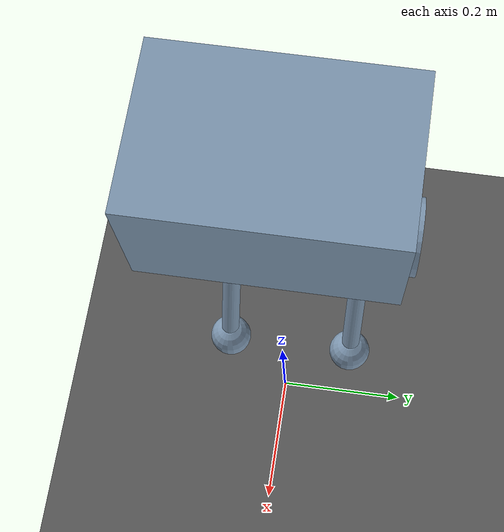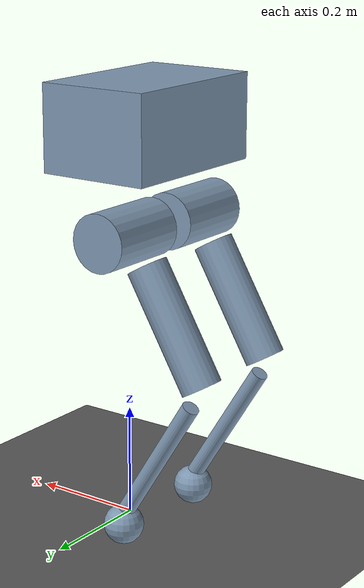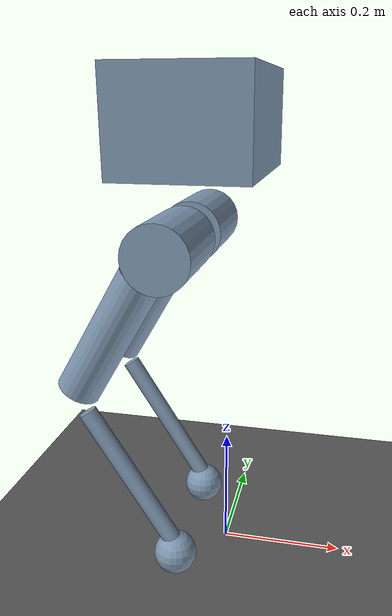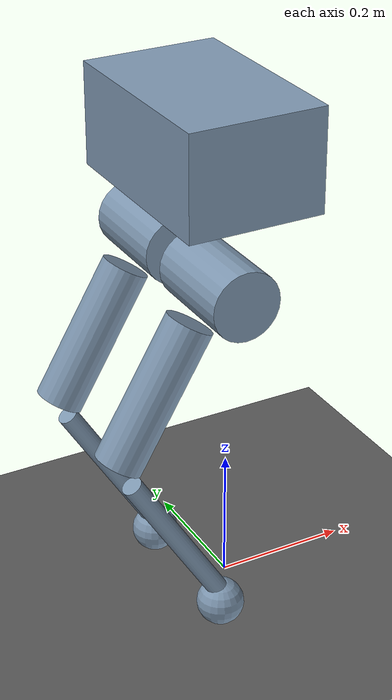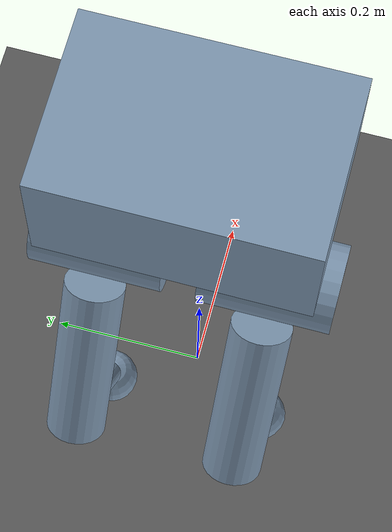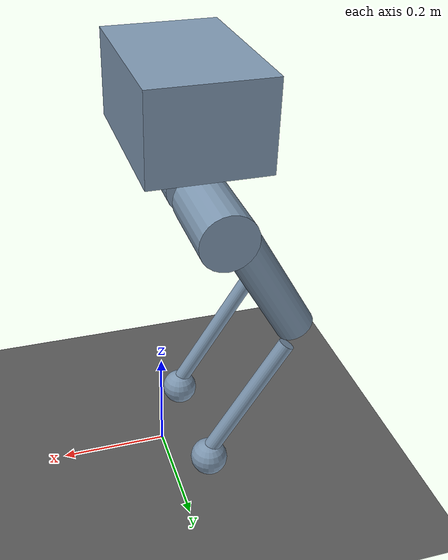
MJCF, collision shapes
<mujoco model="PF_A">
  <compiler angle="radian" meshdir="meshes" autolimits="true" />
  <size njmax="5000" nconmax="10000" />
  <asset>
    <mesh name="base_link" file="base_link.STL" />
    <mesh name="abad_left_link" file="abad_left_link.STL" />
    <mesh name="hip_left_link" file="hip_left_link.STL" />
    <mesh name="knee_left_link" file="knee_left_link.STL" />
    <mesh name="foot_left_link" file="foot_left_link.STL" />
    <mesh name="abad_right_link" file="abad_right_link.STL" />
    <mesh name="hip_right_link" file="hip_right_link.STL" />
    <mesh name="knee_right_link" file="knee_right_link.STL" />
    <mesh name="foot_right_link" file="foot_right_link.STL" />
  </asset>

  <default>
    <light castshadow="false" diffuse="1 1 1" />
    <camera fovy="60" />
    <default class="visual">
      <geom contype="0" conaffinity="0" group="1" type="mesh" rgba="0.8 0.3 0.3 1"/>
    </default>
    <default class="collision">
      <geom contype="1" conaffinity="1" friction="1.0 0.3 0.3" rgba="0.5 0.6 0.7 0" margin="0.000"
        group="0" />
    </default>
    <joint damping="0.05" armature="0.01" frictionloss="0.01" />
  </default>

  <visual>
    <rgba com="0.502 1.0 0 1.0" fog="0 0 0 1" contactpoint="0.9 0.9 0.9 0.8"
      contactforce="0.9 0.9 0.9 0.5" />
    <scale com="0.05" forcewidth="0.04" contactwidth="0.10" contactheight="0.005" selectpoint="0.01" />
    <map force="0.015" />
  </visual>

  <asset>
    <texture type="skybox" builtin="gradient" width="512" height="512" rgb1=".4 .6 .8" rgb2="0 0 0" />
    <texture name="texgeom" type="cube" builtin="flat" mark="cross" width="128" height="128"
      rgb1="0.6 0.6 0.6" rgb2="0.6 0.6 0.6" markrgb="1 1 1" />
    <texture name="texplane" type="2d" builtin="checker" rgb1=".4 .4 .4" rgb2=".6 .6 .6"
      width="512" height="512" />
    <material name='MatPlane' reflectance='0.3' texture="texplane" texrepeat="1 1" texuniform="true"
      rgba=".7 .7 .7 1" />
  </asset>
  <option timestep="0.0005" />

  <worldbody>
    <light directional="true" diffuse=".8 .8 .8" pos="0 0 10" dir="0 0 -10" />
    <geom name="floor" pos="0 0 0" type="plane" size="0 0 1" material="MatPlane"
      friction="1.0 0.3 0.3" />
    <camera name="track" mode="targetbody" target="base" pos="2.5 -2.3 1.2"
      xyaxes="1 0 0 0 0.707 0.707" />

    <body name="base" pos="0 0 0.63">
      <inertial pos="-0.0211701 0.00034639 0.00300161"
        quat="0.940856 -0.0179436 -0.338331 -0.000434039" mass="5.65937"
        diaginertia="0.0849171 0.0566351 0.0481461" />
      <joint name="floating_base" type="free" />
      <geom class="visual" mesh="base_link" />
      <site name="imu" pos="0 0 0" />
      <geom class="collision" size="0.1 0.15 0.075" pos="-0.04 0 0.09" type="box" />
      <body name="abad_L_Link" pos="0.0142 0.095 -0.08176">
        <inertial pos="-0.0701016 0.0472637 0.00010664" quat="0.598895 0.589935 0.381283 0.38461"
          mass="1.03649" diaginertia="0.00221344 0.00178073 0.00114915" />
        <joint name="abad_L_Joint" pos="0 0 0" axis="1 0 0" range="-0.383972 0.785398" />
        <geom class="visual" mesh="abad_left_link" />
        <geom class="collision" size="0.05 0.075" pos="-0.08 0 0" quat="0.707388 0.706825 0 0"
          type="cylinder" />
        <body name="hip_L_Link" pos="-0.0802 0.031 0">
          <inertial pos="-0.030474 -0.0544646 -0.0392024" quat="0.804429 0.225772 0.21211 0.506883"
            mass="1.73405" diaginertia="0.016109 0.0158466 0.00229167" />
          <joint name="hip_L_Joint" pos="0 0 0" axis="0 1 0" range="-1.0472 1.48353" />
          <geom class="visual" mesh="hip_left_link" />
          <geom class="collision" size="0.035 0.11" pos="-0.1 -0.03 -0.14"
            quat="0.965093 0 0.261909 0"
            type="cylinder" />
          <body name="knee_L_Link" pos="-0.15 -0.021 -0.25981">
            <inertial pos="0.0882117 -4.63957e-05 -0.146218"
              quat="0.679299 -0.187405 -0.186428 0.6846" mass="0.399784"
              diaginertia="0.00645846 0.0064392 0.000105438" />
            <joint name="knee_L_Joint" pos="0 0 0" axis="0 -1 0" range="-1.01229 1.25664" />
            <geom class="visual" mesh="knee_left_link" />
            <geom class="collision" size="0.015 0.13" pos="0.078 0 -0.12"
              quat="0.962425 0 -0.271547 0"
              type="cylinder" />
            <geom pos="0.15 0 -0.29066" class="visual" mesh="foot_left_link" />
            <geom class="collision" size="0.035" pos="0.15 0 -0.25566" />
          </body>
        </body>
      </body>
      <body name="abad_R_Link" pos="0.0142 -0.095 -0.08176">
        <inertial pos="-0.0701028 -0.0472637 0.00010253" quat="0.384657 0.381205 0.590084 0.598768"
          mass="1.03649" diaginertia="0.0022135 0.00178059 0.00114926" />
        <joint name="abad_R_Joint" pos="0 0 0" axis="1 0 0" range="-0.785398 0.383972" />
        <geom class="visual" mesh="abad_right_link" />
        <geom class="collision" size="0.05 0.075" pos="-0.08 0 0" quat="0.707388 0.706825 0 0"
          type="cylinder" />
        <body name="hip_R_Link" pos="-0.0802 -0.031 0">
          <inertial pos="-0.0304772 0.0544646 -0.0391964" quat="0.50741 0.211947 0.225908 0.804101"
            mass="1.73405" diaginertia="0.0161091 0.0158471 0.00229178" />
          <joint name="hip_R_Joint" pos="0 0 0" axis="0 -1 0" range="-1.48353 1.0472" />
          <geom class="visual" mesh="hip_right_link" />
          <geom class="collision" size="0.035 0.11" pos="-0.1 0.03 -0.14"
            quat="0.965093 0 0.261909 0" type="cylinder" />
          <body name="knee_R_Link" pos="-0.15 0.021 -0.25981">
            <inertial pos="0.0882118 4.62985e-05 -0.146218"
              quat="0.684601 -0.186428 -0.187406 0.679298" mass="0.399785"
              diaginertia="0.00645847 0.0064392 0.000105439" />
            <joint name="knee_R_Joint" pos="0 0 0" axis="0 1 0" range="-1.25664 1.01229" />
            <geom class="visual" mesh="knee_right_link" />
            <geom class="collision" size="0.015 0.13" pos="0.078 0 -0.12"
              quat="0.962425 0 -0.271547 0"
              type="cylinder" />
            <geom pos="0.15 0 -0.29066" class="visual" mesh="foot_right_link" />
            <geom class="collision" size="0.035" pos="0.15 0 -0.25566" />
          </body>
        </body>
      </body>
    </body>
  </worldbody>

  <actuator>
    <motor name="abad_L_Joint" gear="1" joint="abad_L_Joint" />
    <motor name="hip_L_Joint" gear="1" joint="hip_L_Joint" />
    <motor name="knee_L_Joint" gear="1" joint="knee_L_Joint" />
    <motor name="abad_R_Joint" gear="1" joint="abad_R_Joint" />
    <motor name="hip_R_Joint" gear="1" joint="hip_R_Joint" />
    <motor name="knee_R_Joint" gear="1" joint="knee_R_Joint" />
  </actuator>

  <sensor>
    <framequat name="Body_Quat" objtype="site" objname="imu" />
    <gyro name="Body_Gyro" site="imu" />
    <accelerometer name="Body_Acc" site="imu" />

    <jointpos name="abad_L_Joint_pos" joint="abad_L_Joint" />
    <jointpos name="hip_L_Joint_pos" joint="hip_L_Joint" />
    <jointpos name="knee_L_Joint_pos" joint="knee_L_Joint" />
    <jointpos name="abad_R_Joint_pos" joint="abad_R_Joint" />
    <jointpos name="hip_R_Joint_pos" joint="hip_R_Joint" />
    <jointpos name="knee_R_Joint_pos" joint="knee_R_Joint" />

    <jointvel name="abad_L_Joint_vel" joint="abad_L_Joint" />
    <jointvel name="hip_L_Joint_vel" joint="hip_L_Joint" />
    <jointvel name="knee_L_Joint_vel" joint="knee_L_Joint" />
    <jointvel name="abad_R_Joint_vel" joint="abad_R_Joint" />
    <jointvel name="hip_R_Joint_vel" joint="hip_R_Joint" />
    <jointvel name="knee_R_Joint_vel" joint="knee_R_Joint" />
  </sensor>
</mujoco>
